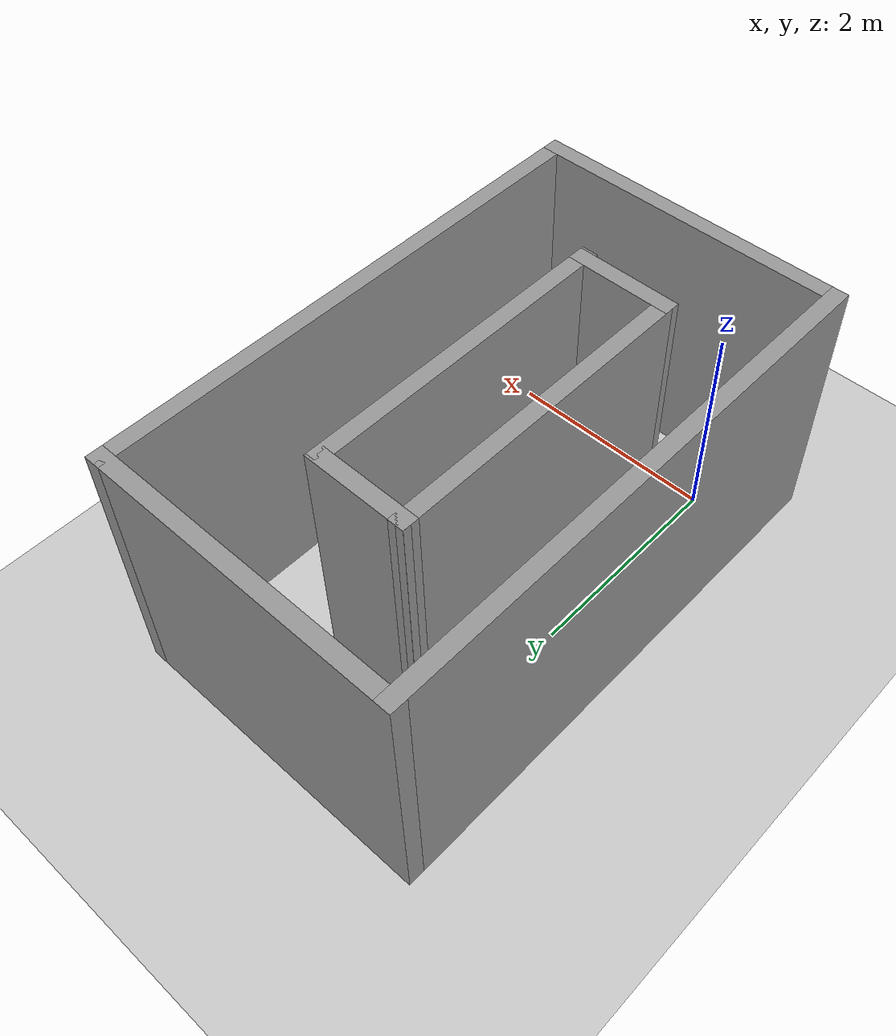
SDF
<sdf version="1.7">
 <world name="default">
  <light name="sun" type="directional">
   <pose>0 0 10 0 -0 0</pose>
   <diffuse>0.8 0.8 0.8 1</diffuse>
   <specular>0.2 0.2 0.2 1</specular>
   <attenuation>
    <range>1000</range>
    <constant>0.9</constant>
    <linear>0.01</linear>
    <quadratic>0.001</quadratic>
   </attenuation>
   <direction>-0.5 0.1 -0.9</direction>
   <spot><inner_angle>0</inner_angle><outer_angle>0</outer_angle><falloff>0</falloff></spot>
  </light>
  <model name="ground_plane">
   <static>1</static>
   <link name="link">
    <collision name="collision">
     <geometry><plane><normal>0 0 1</normal><size>100 100</size></plane></geometry>
     <surface><friction><ode><mu>100</mu><mu2>50</mu2></ode></friction></surface>
    </collision>
    <visual name="visual">
     <cast_shadows>0</cast_shadows>
     <geometry><plane><normal>0 0 1</normal><size>100 100</size></plane></geometry>
     <material>
      <script><uri>file://media/materials/scripts/gazebo.material</uri><name>Gazebo/Grey</name></script>
     </material>
    </visual>
   </link>
  </model>
  <gravity>0 0 -9.8</gravity>
  <magnetic_field>6e-06 2.3e-05 -4.2e-05</magnetic_field>
  <atmosphere type="adiabatic"/>
  <physics type="ode">
   <max_step_size>0.001</max_step_size>
   <real_time_factor>1</real_time_factor>
   <real_time_update_rate>1000</real_time_update_rate>
  </physics>
  <scene><ambient>0.4 0.4 0.4 1</ambient><background>0.7 0.7 0.7 1</background><shadows>1</shadows></scene>
  <audio><device>default</device></audio>
  <spherical_coordinates>
   <surface_model>EARTH_WGS84</surface_model>
   <latitude_deg>0</latitude_deg>
   <longitude_deg>0</longitude_deg>
   <elevation>0</elevation>
   <heading_deg>0</heading_deg>
  </spherical_coordinates>
  <model name="square">
   <pose>2.32942 1.87807 0 0 -0 0</pose>
   <link name="Wall_10">
    <collision name="Wall_10_Collision">
     <geometry><box><size>3 0.15 2.5</size></box></geometry>
     <pose>0 0 1.25 0 -0 0</pose>
    </collision>
    <visual name="Wall_10_Visual">
     <pose>0 0 1.25 0 -0 0</pose>
     <geometry><box><size>3 0.15 2.5</size></box></geometry>
     <material>
      <script><uri>file://media/materials/scripts/gazebo.material</uri><name>Gazebo/Grey</name></script>
      <ambient>1 1 1 1</ambient>
     </material>
     <meta><layer>0</layer></meta>
    </visual>
    <pose>-1.99906 -0.026809 0 0 -0 1.5708</pose>
   </link>
   <link name="Wall_2">
    <collision name="Wall_2_Collision">
     <geometry><box><size>5 0.15 2.5</size></box></geometry>
     <pose>0 0 1.25 0 -0 0</pose>
    </collision>
    <visual name="Wall_2_Visual">
     <pose>0 0 1.25 0 -0 0</pose>
     <geometry><box><size>5 0.15 2.5</size></box></geometry>
     <material>
      <script><uri>file://media/materials/scripts/gazebo.material</uri><name>Gazebo/Grey</name></script>
      <ambient>1 1 1 1</ambient>
     </material>
     <meta><layer>0</layer></meta>
    </visual>
    <pose>-2.91494 0 0 0 -0 -1.5708</pose>
   </link>
   <link name="Wall_3">
    <collision name="Wall_3_Collision">
     <geometry><box><size>3 0.15 2.5</size></box></geometry>
     <pose>0 0 1.25 0 -0 0</pose>
    </collision>
    <visual name="Wall_3_Visual">
     <pose>0 0 1.25 0 -0 0</pose>
     <geometry><box><size>3 0.15 2.5</size></box></geometry>
     <material>
      <script><uri>file://media/materials/scripts/gazebo.material</uri><name>Gazebo/Grey</name></script>
      <ambient>1 1 1 1</ambient>
     </material>
     <meta><layer>0</layer></meta>
    </visual>
    <pose>-1.48994 -2.425 0 0 -0 0</pose>
   </link>
   <link name="Wall_4">
    <collision name="Wall_4_Collision">
     <geometry><box><size>5 0.15 2.5</size></box></geometry>
     <pose>0 0 1.25 0 -0 0</pose>
    </collision>
    <visual name="Wall_4_Visual">
     <pose>0 0 1.25 0 -0 0</pose>
     <geometry><box><size>5 0.15 2.5</size></box></geometry>
     <material>
      <script><uri>file://media/materials/scripts/gazebo.material</uri><name>Gazebo/Grey</name></script>
      <ambient>1 1 1 1</ambient>
     </material>
     <meta><layer>0</layer></meta>
    </visual>
    <pose>-0.064943 0 0 0 -0 1.5708</pose>
   </link>
   <link name="Wall_5">
    <collision name="Wall_5_Collision">
     <geometry><box><size>3 0.15 2.5</size></box></geometry>
     <pose>0 0 1.25 0 -0 0</pose>
    </collision>
    <visual name="Wall_5_Visual">
     <pose>0 0 1.25 0 -0 0</pose>
     <geometry><box><size>3 0.15 2.5</size></box></geometry>
     <material>
      <script><uri>file://media/materials/scripts/gazebo.material</uri><name>Gazebo/Grey</name></script>
      <ambient>1 1 1 1</ambient>
     </material>
     <meta><layer>0</layer></meta>
    </visual>
    <pose>-1.48994 2.425 0 0 -0 3.14159</pose>
   </link>
   <link name="Wall_7">
    <collision name="Wall_7_Collision">
     <geometry><box><size>0.980174 0.15 2.5</size></box></geometry>
     <pose>0 0 1.25 0 -0 0</pose>
    </collision>
    <visual name="Wall_7_Visual">
     <pose>0 0 1.25 0 -0 0</pose>
     <geometry><box><size>0.980174 0.15 2.5</size></box></geometry>
     <material>
      <script><uri>file://media/materials/scripts/gazebo.material</uri><name>Gazebo/Grey</name></script>
      <ambient>1 1 1 1</ambient>
     </material>
     <meta><layer>0</layer></meta>
    </visual>
    <pose>-1.58399 1.3946 0 0 -0 -0.008657</pose>
   </link>
   <link name="Wall_8">
    <collision name="Wall_8_Collision">
     <geometry><box><size>3 0.15 2.5</size></box></geometry>
     <pose>0 0 1.25 0 -0 0</pose>
    </collision>
    <visual name="Wall_8_Visual">
     <pose>0 0 1.25 0 -0 0</pose>
     <geometry><box><size>3 0.15 2.5</size></box></geometry>
     <material>
      <script><uri>file://media/materials/scripts/gazebo.material</uri><name>Gazebo/Grey</name></script>
      <ambient>1 1 1 1</ambient>
     </material>
     <meta><layer>0</layer></meta>
    </visual>
    <pose>-1.16892 -0.053996 0 0 -0 -1.5708</pose>
   </link>
   <link name="Wall_9">
    <collision name="Wall_9_Collision">
     <geometry><box><size>0.980174 0.15 2.5</size></box></geometry>
     <pose>0 0 1.25 0 -0 0</pose>
    </collision>
    <visual name="Wall_9_Visual">
     <pose>0 0 1.25 0 -0 0</pose>
     <geometry><box><size>0.980174 0.15 2.5</size></box></geometry>
     <material>
      <script><uri>file://media/materials/scripts/gazebo.material</uri><name>Gazebo/Grey</name></script>
      <ambient>1 1 1 1</ambient>
     </material>
     <meta><layer>0</layer></meta>
    </visual>
    <pose>-1.58399 -1.4554 0 0 -0 3.13294</pose>
   </link>
   <static>1</static>
  </model>
 </world>
</sdf>
